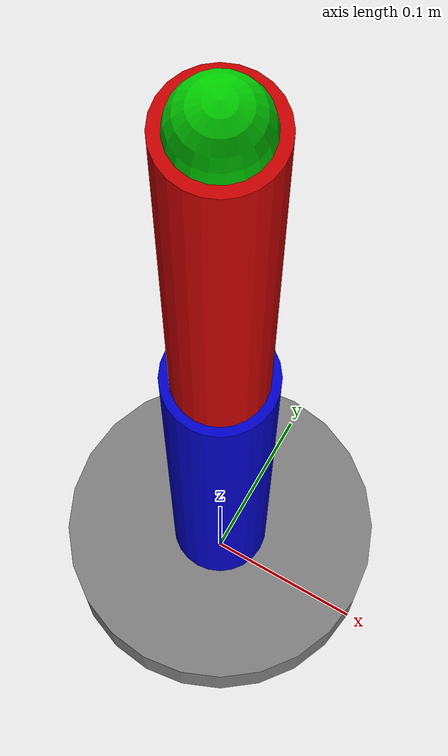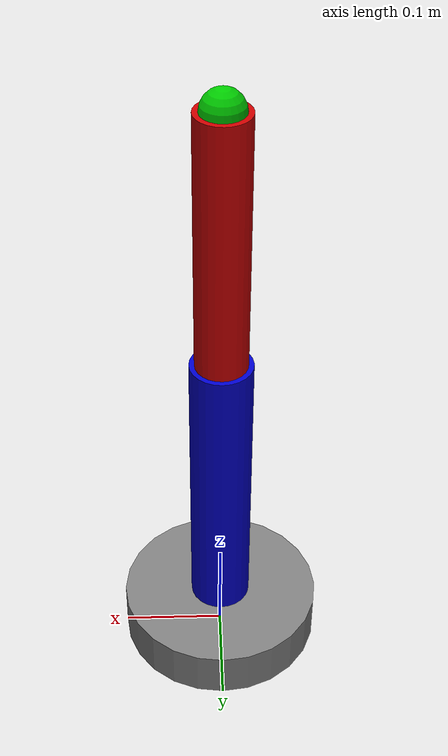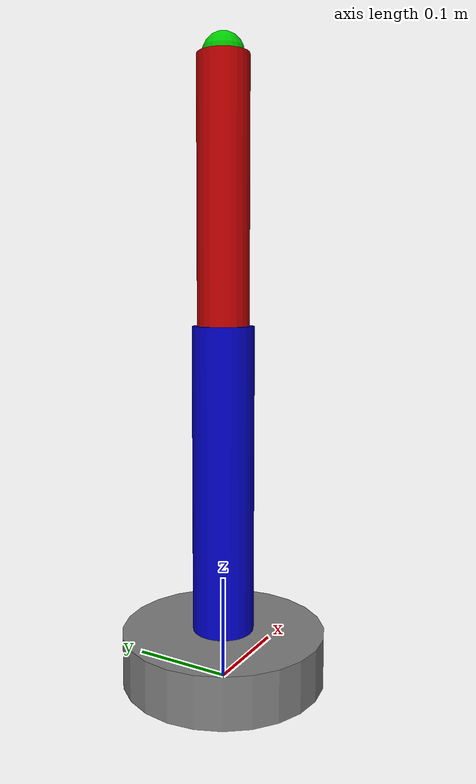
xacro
<?xml version="1.0"?>
<robot name="robot_arm" xmlns:xacro="http://www.ros.org/wiki/xacro">

  <!-- ARQUIVO PRINCIPAL                            -->
  <!-- Importa propriedades e macros, define o robô -->

  <!-- IMPORTAÇÃO DE ARQUIVOS -->
  <!--
    xacro:include importa o conteúdo de outros arquivos .xacro
    $(find package_name) retorna o caminho do pacote ROS
  -->
  <xacro:include filename="$(find rm_description)/urdf/properties.xacro"/>
  <xacro:include filename="$(find rm_description)/urdf/macros.xacro"/>

  <!-- BASE FOOTPRINT       -->
  <link name="base_footprint"/>

  <!-- BASE LINK            -->
  <link name="base_link">
    <visual>
      <origin xyz="0 0 0" rpy="0 0 0"/>
      <geometry>
        <cylinder radius="${base_radius}" length="${base_height}"/>
      </geometry>
      <material name="gray"/>
    </visual>
    <collision>
      <origin xyz="0 0 0" rpy="0 0 0"/>
      <geometry>
        <cylinder radius="${base_radius}" length="${base_height}"/>
      </geometry>
    </collision>
    <inertial>
      <origin xyz="0 0 0" rpy="0 0 0"/>
      <mass value="${base_mass}"/>
      <inertia
        ixx="${(1/12) * base_mass * (3*base_radius*base_radius + base_height*base_height)}"
        ixy="0.0" ixz="0.0"
        iyy="${(1/12) * base_mass * (3*base_radius*base_radius + base_height*base_height)}"
        iyz="0.0"
        izz="${(1/2) * base_mass * base_radius * base_radius}"/>
    </inertial>
  </link>

  <joint name="base_joint" type="fixed">
    <parent link="base_footprint"/>
    <child link="base_link"/>
    <origin xyz="0 0 ${base_height/2}" rpy="0 0 0"/>
  </joint>

  <!-- LINK 1 (usando macro) -->
  <!-- TAREFA: Chame o macro cylinder_link para criar o link1 -->
  <!-- Parâmetros: name, length, radius, mass, material -->
  <xacro:cylinder_link
    name="link1"
    length="${link1_length}"
    radius="${link1_radius}"
    mass="${link1_mass}"
    material="blue"/>

  <joint name="joint1" type="revolute">
    <parent link="base_link"/>
    <child link="link1"/>
    <origin xyz="0 0 ${base_height/2}" rpy="0 0 0"/>
    <axis xyz="0 0 1"/>
    <limit lower="${-pi}" upper="${pi}" effort="10" velocity="1.0"/>
  </joint>

  <!-- LINK 2 (usando macro) -->
  <!-- TAREFA: Chame o macro cylinder_link para criar o link2 -->
  <xacro:cylinder_link
    name="link2"
    length="${link2_length}"
    radius="${link2_radius}"
    mass="${link2_mass}"
    material="red"/>

  <joint name="joint2" type="revolute">
    <parent link="link1"/>
    <child link="link2"/>
    <origin xyz="0 0 ${link1_length}" rpy="0 0 0"/>
    <axis xyz="0 1 0"/>
    <limit lower="${-pi*0.75}" upper="${pi*0.75}" effort="10" velocity="1.0"/>
  </joint>

  <!-- END EFFECTOR         -->
  <!-- TAREFA: Use o macro sphere_link para criar o end_effector -->
  <xacro:sphere_link
    name="end_effector"
    radius="${ee_radius}"
    mass="${ee_mass}"
    material="green"/>

  <joint name="end_effector_joint" type="fixed">
    <parent link="link2"/>
    <child link="end_effector"/>
    <origin xyz="0 0 ${link2_length}" rpy="0 0 0"/>
  </joint>

</robot>

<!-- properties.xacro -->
<robot xmlns:xacro="http://www.ros.org/wiki/xacro">

  <!-- ARQUIVO DE PROPRIEDADES                      -->
  <!-- Contém todas as constantes e dimensões       -->

  <!-- Propriedades da Base -->
  <xacro:property name="base_radius" value="0.1"/>
  <xacro:property name="base_height" value="0.05"/>
  <xacro:property name="base_mass" value="2.0"/>

  <!-- TAREFA: Defina as propriedades do Link 1 -->
  <!-- Use os valores da tabela de referência (seção 2.2) -->
  <xacro:property name="link1_length" value="0.3"/>
  <xacro:property name="link1_radius" value="0.03"/>
  <xacro:property name="link1_mass" value="1.0"/>

  <!-- TAREFA: Defina as propriedades do Link 2 -->
  <xacro:property name="link2_length" value="0.25"/>
  <xacro:property name="link2_radius" value="0.025"/>
  <xacro:property name="link2_mass" value="0.8"/>

  <!-- Propriedades do End Effector -->
  <xacro:property name="ee_radius" value="0.02"/>
  <xacro:property name="ee_mass" value="0.1"/>

  <!-- MATERIAIS (cores)                            -->
  <material name="gray">
    <color rgba="0.5 0.5 0.5 1"/>
  </material>

  <material name="blue">
    <color rgba="0 0 0.8 1"/>
  </material>

  <material name="red">
    <color rgba="0.8 0 0 1"/>
  </material>

  <material name="green">
    <color rgba="0 0.8 0 1"/>
  </material>

</robot>

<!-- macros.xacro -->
<robot xmlns:xacro="http://www.ros.org/wiki/xacro">

  <!-- ARQUIVO DE MACROS                            -->
  <!-- Contém componentes reutilizáveis             -->

  <!-- MACRO: LINK CILÍNDRICO -->
  <xacro:macro name="cylinder_link" params="name length radius mass material">
    <link name="${name}">
      <visual>
        <!-- Desloca para que a BASE do cilindro fique na origem -->
        <origin xyz="0 0 ${length/2}" rpy="0 0 0"/>
        <geometry>
          <cylinder radius="${radius}" length="${length}"/>
        </geometry>
        <material name="${material}"/>
      </visual>

      <collision>
        <origin xyz="0 0 ${length/2}" rpy="0 0 0"/>
        <geometry>
          <cylinder radius="${radius}" length="${length}"/>
        </geometry>
      </collision>

      <inertial>
        <origin xyz="0 0 ${length/2}" rpy="0 0 0"/>
        <mass value="${mass}"/>
        <!-- Fórmula de inércia para cilindro sólido -->
        <inertia
          ixx="${(1/12) * mass * (3*radius*radius + length*length)}"
          ixy="0.0" ixz="0.0"
          iyy="${(1/12) * mass * (3*radius*radius + length*length)}"
          iyz="0.0"
          izz="${(1/2) * mass * radius * radius}"/>
      </inertial>
    </link>
  </xacro:macro>

  <!-- MACRO: LINK ESFÉRICO -->
  <xacro:macro name="sphere_link" params="name radius mass material">
    <link name="${name}">
      <visual>
        <origin xyz="0 0 0" rpy="0 0 0"/>
        <geometry>
          <sphere radius="${radius}"/>
        </geometry>
        <material name="${material}"/>
      </visual>

      <collision>
        <origin xyz="0 0 0" rpy="0 0 0"/>
        <geometry>
          <sphere radius="${radius}"/>
        </geometry>
      </collision>

      <inertial>
        <origin xyz="0 0 0" rpy="0 0 0"/>
        <mass value="${mass}"/>
        <!-- Fórmula de inércia para esfera sólida -->
        <inertia
          ixx="${(2/5) * mass * radius * radius}"
          ixy="0.0" ixz="0.0"
          iyy="${(2/5) * mass * radius * radius}"
          iyz="0.0"
          izz="${(2/5) * mass * radius * radius}"/>
      </inertial>
    </link>
  </xacro:macro>

</robot>
